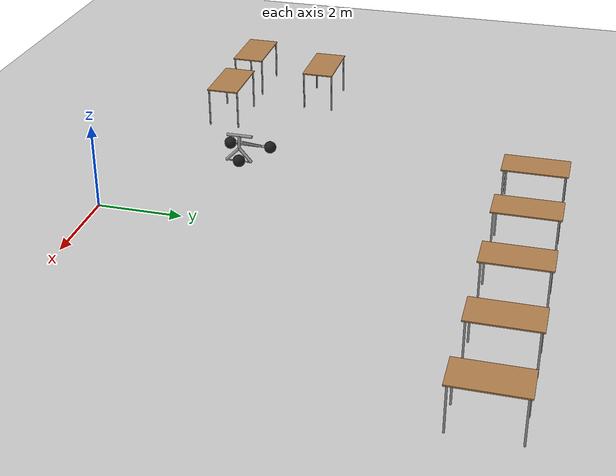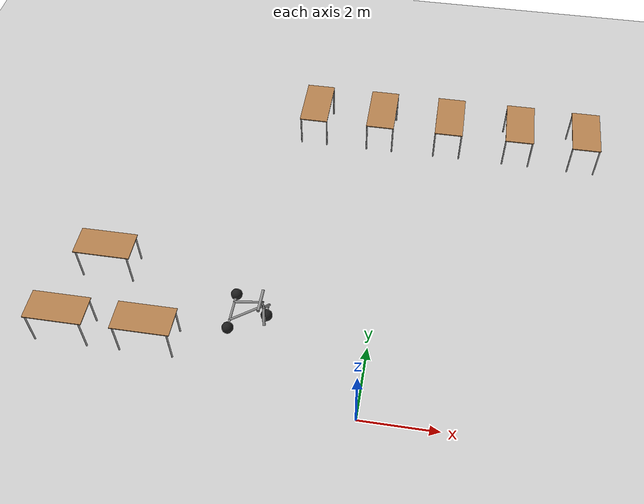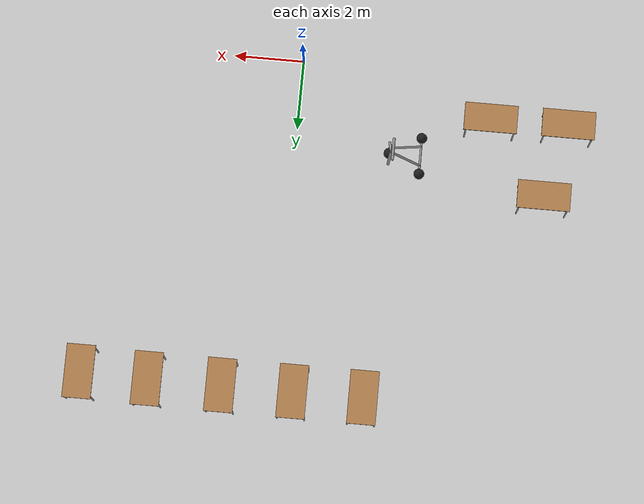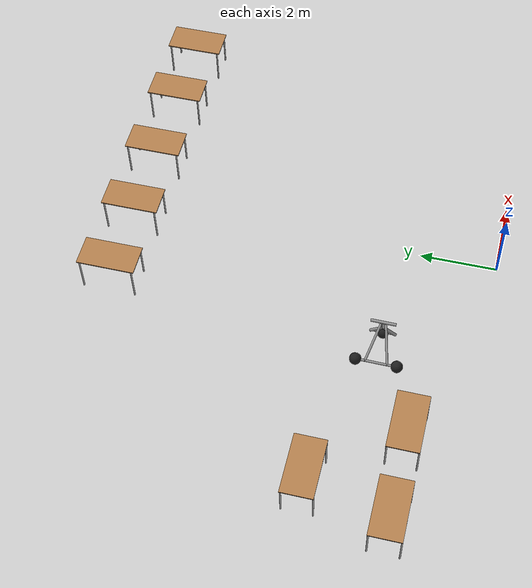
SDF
<sdf version="1.6">
 <world name="default">
  <model name="ground_plane">
   <static>1</static>
   <link name="link">
    <collision name="collision">
     <geometry><plane><normal>0 0 1</normal><size>100 100</size></plane></geometry>
     <surface><friction><ode><mu>100</mu><mu2>50</mu2></ode></friction></surface>
    </collision>
    <visual name="visual">
     <cast_shadows>0</cast_shadows>
     <geometry><plane><normal>0 0 1</normal><size>100 100</size></plane></geometry>
     <material>
      <script><uri>file://media/materials/scripts/gazebo.material</uri><name>Gazebo/Grey</name></script>
     </material>
    </visual>
   </link>
  </model>
  <model name="table_clone">
   <static>1</static>
   <link name="link">
    <collision name="surface">
     <pose>0 0 1 0 -0 0</pose>
     <geometry><box><size>1.5 0.8 0.03</size></box></geometry>
     <surface><friction><ode><mu>0.6</mu><mu2>0.6</mu2></ode></friction></surface>
    </collision>
    <visual name="visual1">
     <pose>0 0 1 0 -0 0</pose>
     <geometry><box><size>1.5 0.8 0.03</size></box></geometry>
     <material>
      <script><uri>file://media/materials/scripts/gazebo.material</uri><name>Gazebo/Wood</name></script>
     </material>
    </visual>
    <collision name="front_left_leg">
     <pose>0.68 0.38 0.5 0 -0 0</pose>
     <geometry><cylinder><radius>0.02</radius><length>1</length></cylinder></geometry>
    </collision>
    <visual name="front_left_leg">
     <pose>0.68 0.38 0.5 0 -0 0</pose>
     <geometry><cylinder><radius>0.02</radius><length>1</length></cylinder></geometry>
     <material>
      <script><uri>file://media/materials/scripts/gazebo.material</uri><name>Gazebo/Grey</name></script>
     </material>
    </visual>
    <collision name="front_right_leg">
     <pose>0.68 -0.38 0.5 0 -0 0</pose>
     <geometry><cylinder><radius>0.02</radius><length>1</length></cylinder></geometry>
    </collision>
    <visual name="front_right_leg">
     <pose>0.68 -0.38 0.5 0 -0 0</pose>
     <geometry><cylinder><radius>0.02</radius><length>1</length></cylinder></geometry>
     <material>
      <script><uri>file://media/materials/scripts/gazebo.material</uri><name>Gazebo/Grey</name></script>
     </material>
    </visual>
    <collision name="back_right_leg">
     <pose>-0.68 -0.38 0.5 0 -0 0</pose>
     <geometry><cylinder><radius>0.02</radius><length>1</length></cylinder></geometry>
    </collision>
    <visual name="back_right_leg">
     <pose>-0.68 -0.38 0.5 0 -0 0</pose>
     <geometry><cylinder><radius>0.02</radius><length>1</length></cylinder></geometry>
     <material>
      <script><uri>file://media/materials/scripts/gazebo.material</uri><name>Gazebo/Grey</name></script>
     </material>
    </visual>
    <collision name="back_left_leg">
     <pose>-0.68 0.38 0.5 0 -0 0</pose>
     <geometry><cylinder><radius>0.02</radius><length>1</length></cylinder></geometry>
    </collision>
    <visual name="back_left_leg">
     <pose>-0.68 0.38 0.5 0 -0 0</pose>
     <geometry><cylinder><radius>0.02</radius><length>1</length></cylinder></geometry>
     <material>
      <script><uri>file://media/materials/scripts/gazebo.material</uri><name>Gazebo/Grey</name></script>
     </material>
    </visual>
   </link>
   <pose>5.36982 9.5628 0 0 0 -1.57</pose>
  </model>
  <model name="table_clone_0">
   <static>1</static>
   <link name="link">
    <collision name="surface">
     <pose>0 0 1 0 -0 0</pose>
     <geometry><box><size>1.5 0.8 0.03</size></box></geometry>
     <surface><friction><ode><mu>0.6</mu><mu2>0.6</mu2></ode></friction></surface>
    </collision>
    <visual name="visual1">
     <pose>0 0 1 0 -0 0</pose>
     <geometry><box><size>1.5 0.8 0.03</size></box></geometry>
     <material>
      <script><uri>file://media/materials/scripts/gazebo.material</uri><name>Gazebo/Wood</name></script>
     </material>
    </visual>
    <collision name="front_left_leg">
     <pose>0.68 0.38 0.5 0 -0 0</pose>
     <geometry><cylinder><radius>0.02</radius><length>1</length></cylinder></geometry>
    </collision>
    <visual name="front_left_leg">
     <pose>0.68 0.38 0.5 0 -0 0</pose>
     <geometry><cylinder><radius>0.02</radius><length>1</length></cylinder></geometry>
     <material>
      <script><uri>file://media/materials/scripts/gazebo.material</uri><name>Gazebo/Grey</name></script>
     </material>
    </visual>
    <collision name="front_right_leg">
     <pose>0.68 -0.38 0.5 0 -0 0</pose>
     <geometry><cylinder><radius>0.02</radius><length>1</length></cylinder></geometry>
    </collision>
    <visual name="front_right_leg">
     <pose>0.68 -0.38 0.5 0 -0 0</pose>
     <geometry><cylinder><radius>0.02</radius><length>1</length></cylinder></geometry>
     <material>
      <script><uri>file://media/materials/scripts/gazebo.material</uri><name>Gazebo/Grey</name></script>
     </material>
    </visual>
    <collision name="back_right_leg">
     <pose>-0.68 -0.38 0.5 0 -0 0</pose>
     <geometry><cylinder><radius>0.02</radius><length>1</length></cylinder></geometry>
    </collision>
    <visual name="back_right_leg">
     <pose>-0.68 -0.38 0.5 0 -0 0</pose>
     <geometry><cylinder><radius>0.02</radius><length>1</length></cylinder></geometry>
     <material>
      <script><uri>file://media/materials/scripts/gazebo.material</uri><name>Gazebo/Grey</name></script>
     </material>
    </visual>
    <collision name="back_left_leg">
     <pose>-0.68 0.38 0.5 0 -0 0</pose>
     <geometry><cylinder><radius>0.02</radius><length>1</length></cylinder></geometry>
    </collision>
    <visual name="back_left_leg">
     <pose>-0.68 0.38 0.5 0 -0 0</pose>
     <geometry><cylinder><radius>0.02</radius><length>1</length></cylinder></geometry>
     <material>
      <script><uri>file://media/materials/scripts/gazebo.material</uri><name>Gazebo/Grey</name></script>
     </material>
    </visual>
   </link>
   <pose>3.47417 9.59504 0 0 0 -1.57</pose>
  </model>
  <model name="table_clone_1">
   <static>1</static>
   <link name="link">
    <collision name="surface">
     <pose>0 0 1 0 -0 0</pose>
     <geometry><box><size>1.5 0.8 0.03</size></box></geometry>
     <surface><friction><ode><mu>0.6</mu><mu2>0.6</mu2></ode></friction></surface>
    </collision>
    <visual name="visual1">
     <pose>0 0 1 0 -0 0</pose>
     <geometry><box><size>1.5 0.8 0.03</size></box></geometry>
     <material>
      <script><uri>file://media/materials/scripts/gazebo.material</uri><name>Gazebo/Wood</name></script>
     </material>
    </visual>
    <collision name="front_left_leg">
     <pose>0.68 0.38 0.5 0 -0 0</pose>
     <geometry><cylinder><radius>0.02</radius><length>1</length></cylinder></geometry>
    </collision>
    <visual name="front_left_leg">
     <pose>0.68 0.38 0.5 0 -0 0</pose>
     <geometry><cylinder><radius>0.02</radius><length>1</length></cylinder></geometry>
     <material>
      <script><uri>file://media/materials/scripts/gazebo.material</uri><name>Gazebo/Grey</name></script>
     </material>
    </visual>
    <collision name="front_right_leg">
     <pose>0.68 -0.38 0.5 0 -0 0</pose>
     <geometry><cylinder><radius>0.02</radius><length>1</length></cylinder></geometry>
    </collision>
    <visual name="front_right_leg">
     <pose>0.68 -0.38 0.5 0 -0 0</pose>
     <geometry><cylinder><radius>0.02</radius><length>1</length></cylinder></geometry>
     <material>
      <script><uri>file://media/materials/scripts/gazebo.material</uri><name>Gazebo/Grey</name></script>
     </material>
    </visual>
    <collision name="back_right_leg">
     <pose>-0.68 -0.38 0.5 0 -0 0</pose>
     <geometry><cylinder><radius>0.02</radius><length>1</length></cylinder></geometry>
    </collision>
    <visual name="back_right_leg">
     <pose>-0.68 -0.38 0.5 0 -0 0</pose>
     <geometry><cylinder><radius>0.02</radius><length>1</length></cylinder></geometry>
     <material>
      <script><uri>file://media/materials/scripts/gazebo.material</uri><name>Gazebo/Grey</name></script>
     </material>
    </visual>
    <collision name="back_left_leg">
     <pose>-0.68 0.38 0.5 0 -0 0</pose>
     <geometry><cylinder><radius>0.02</radius><length>1</length></cylinder></geometry>
    </collision>
    <visual name="back_left_leg">
     <pose>-0.68 0.38 0.5 0 -0 0</pose>
     <geometry><cylinder><radius>0.02</radius><length>1</length></cylinder></geometry>
     <material>
      <script><uri>file://media/materials/scripts/gazebo.material</uri><name>Gazebo/Grey</name></script>
     </material>
    </visual>
   </link>
   <pose>1.43565 9.59938 0 0 0 -1.57</pose>
  </model>
  <model name="table_clone_2">
   <static>1</static>
   <link name="link">
    <collision name="surface">
     <pose>0 0 1 0 -0 0</pose>
     <geometry><box><size>1.5 0.8 0.03</size></box></geometry>
     <surface><friction><ode><mu>0.6</mu><mu2>0.6</mu2></ode></friction></surface>
    </collision>
    <visual name="visual1">
     <pose>0 0 1 0 -0 0</pose>
     <geometry><box><size>1.5 0.8 0.03</size></box></geometry>
     <material>
      <script><uri>file://media/materials/scripts/gazebo.material</uri><name>Gazebo/Wood</name></script>
     </material>
    </visual>
    <collision name="front_left_leg">
     <pose>0.68 0.38 0.5 0 -0 0</pose>
     <geometry><cylinder><radius>0.02</radius><length>1</length></cylinder></geometry>
    </collision>
    <visual name="front_left_leg">
     <pose>0.68 0.38 0.5 0 -0 0</pose>
     <geometry><cylinder><radius>0.02</radius><length>1</length></cylinder></geometry>
     <material>
      <script><uri>file://media/materials/scripts/gazebo.material</uri><name>Gazebo/Grey</name></script>
     </material>
    </visual>
    <collision name="front_right_leg">
     <pose>0.68 -0.38 0.5 0 -0 0</pose>
     <geometry><cylinder><radius>0.02</radius><length>1</length></cylinder></geometry>
    </collision>
    <visual name="front_right_leg">
     <pose>0.68 -0.38 0.5 0 -0 0</pose>
     <geometry><cylinder><radius>0.02</radius><length>1</length></cylinder></geometry>
     <material>
      <script><uri>file://media/materials/scripts/gazebo.material</uri><name>Gazebo/Grey</name></script>
     </material>
    </visual>
    <collision name="back_right_leg">
     <pose>-0.68 -0.38 0.5 0 -0 0</pose>
     <geometry><cylinder><radius>0.02</radius><length>1</length></cylinder></geometry>
    </collision>
    <visual name="back_right_leg">
     <pose>-0.68 -0.38 0.5 0 -0 0</pose>
     <geometry><cylinder><radius>0.02</radius><length>1</length></cylinder></geometry>
     <material>
      <script><uri>file://media/materials/scripts/gazebo.material</uri><name>Gazebo/Grey</name></script>
     </material>
    </visual>
    <collision name="back_left_leg">
     <pose>-0.68 0.38 0.5 0 -0 0</pose>
     <geometry><cylinder><radius>0.02</radius><length>1</length></cylinder></geometry>
    </collision>
    <visual name="back_left_leg">
     <pose>-0.68 0.38 0.5 0 -0 0</pose>
     <geometry><cylinder><radius>0.02</radius><length>1</length></cylinder></geometry>
     <material>
      <script><uri>file://media/materials/scripts/gazebo.material</uri><name>Gazebo/Grey</name></script>
     </material>
    </visual>
   </link>
   <pose>-0.563458 9.59911 0 0 0 -1.57</pose>
  </model>
  <model name="table_clone_3">
   <static>1</static>
   <link name="link">
    <collision name="surface">
     <pose>0 0 1 0 -0 0</pose>
     <geometry><box><size>1.5 0.8 0.03</size></box></geometry>
     <surface><friction><ode><mu>0.6</mu><mu2>0.6</mu2></ode></friction></surface>
    </collision>
    <visual name="visual1">
     <pose>0 0 1 0 -0 0</pose>
     <geometry><box><size>1.5 0.8 0.03</size></box></geometry>
     <material>
      <script><uri>file://media/materials/scripts/gazebo.material</uri><name>Gazebo/Wood</name></script>
     </material>
    </visual>
    <collision name="front_left_leg">
     <pose>0.68 0.38 0.5 0 -0 0</pose>
     <geometry><cylinder><radius>0.02</radius><length>1</length></cylinder></geometry>
    </collision>
    <visual name="front_left_leg">
     <pose>0.68 0.38 0.5 0 -0 0</pose>
     <geometry><cylinder><radius>0.02</radius><length>1</length></cylinder></geometry>
     <material>
      <script><uri>file://media/materials/scripts/gazebo.material</uri><name>Gazebo/Grey</name></script>
     </material>
    </visual>
    <collision name="front_right_leg">
     <pose>0.68 -0.38 0.5 0 -0 0</pose>
     <geometry><cylinder><radius>0.02</radius><length>1</length></cylinder></geometry>
    </collision>
    <visual name="front_right_leg">
     <pose>0.68 -0.38 0.5 0 -0 0</pose>
     <geometry><cylinder><radius>0.02</radius><length>1</length></cylinder></geometry>
     <material>
      <script><uri>file://media/materials/scripts/gazebo.material</uri><name>Gazebo/Grey</name></script>
     </material>
    </visual>
    <collision name="back_right_leg">
     <pose>-0.68 -0.38 0.5 0 -0 0</pose>
     <geometry><cylinder><radius>0.02</radius><length>1</length></cylinder></geometry>
    </collision>
    <visual name="back_right_leg">
     <pose>-0.68 -0.38 0.5 0 -0 0</pose>
     <geometry><cylinder><radius>0.02</radius><length>1</length></cylinder></geometry>
     <material>
      <script><uri>file://media/materials/scripts/gazebo.material</uri><name>Gazebo/Grey</name></script>
     </material>
    </visual>
    <collision name="back_left_leg">
     <pose>-0.68 0.38 0.5 0 -0 0</pose>
     <geometry><cylinder><radius>0.02</radius><length>1</length></cylinder></geometry>
    </collision>
    <visual name="back_left_leg">
     <pose>-0.68 0.38 0.5 0 -0 0</pose>
     <geometry><cylinder><radius>0.02</radius><length>1</length></cylinder></geometry>
     <material>
      <script><uri>file://media/materials/scripts/gazebo.material</uri><name>Gazebo/Grey</name></script>
     </material>
    </visual>
   </link>
   <pose>-2.5236 9.5957 0 0 0 -1.57</pose>
  </model>
  <model name="table">
   <static>1</static>
   <link name="link">
    <collision name="surface">
     <pose>0 0 1 0 -0 0</pose>
     <geometry><box><size>1.5 0.8 0.03</size></box></geometry>
     <surface><friction><ode><mu>0.6</mu><mu2>0.6</mu2></ode></friction></surface>
    </collision>
    <visual name="visual1">
     <pose>0 0 1 0 -0 0</pose>
     <geometry><box><size>1.5 0.8 0.03</size></box></geometry>
     <material>
      <script><uri>file://media/materials/scripts/gazebo.material</uri><name>Gazebo/Wood</name></script>
     </material>
    </visual>
    <collision name="front_left_leg">
     <pose>0.68 0.38 0.5 0 -0 0</pose>
     <geometry><cylinder><radius>0.02</radius><length>1</length></cylinder></geometry>
    </collision>
    <visual name="front_left_leg">
     <pose>0.68 0.38 0.5 0 -0 0</pose>
     <geometry><cylinder><radius>0.02</radius><length>1</length></cylinder></geometry>
     <material>
      <script><uri>file://media/materials/scripts/gazebo.material</uri><name>Gazebo/Grey</name></script>
     </material>
    </visual>
    <collision name="front_right_leg">
     <pose>0.68 -0.38 0.5 0 -0 0</pose>
     <geometry><cylinder><radius>0.02</radius><length>1</length></cylinder></geometry>
    </collision>
    <visual name="front_right_leg">
     <pose>0.68 -0.38 0.5 0 -0 0</pose>
     <geometry><cylinder><radius>0.02</radius><length>1</length></cylinder></geometry>
     <material>
      <script><uri>file://media/materials/scripts/gazebo.material</uri><name>Gazebo/Grey</name></script>
     </material>
    </visual>
    <collision name="back_right_leg">
     <pose>-0.68 -0.38 0.5 0 -0 0</pose>
     <geometry><cylinder><radius>0.02</radius><length>1</length></cylinder></geometry>
    </collision>
    <visual name="back_right_leg">
     <pose>-0.68 -0.38 0.5 0 -0 0</pose>
     <geometry><cylinder><radius>0.02</radius><length>1</length></cylinder></geometry>
     <material>
      <script><uri>file://media/materials/scripts/gazebo.material</uri><name>Gazebo/Grey</name></script>
     </material>
    </visual>
    <collision name="back_left_leg">
     <pose>-0.68 0.38 0.5 0 -0 0</pose>
     <geometry><cylinder><radius>0.02</radius><length>1</length></cylinder></geometry>
    </collision>
    <visual name="back_left_leg">
     <pose>-0.68 0.38 0.5 0 -0 0</pose>
     <geometry><cylinder><radius>0.02</radius><length>1</length></cylinder></geometry>
     <material>
      <script><uri>file://media/materials/scripts/gazebo.material</uri><name>Gazebo/Grey</name></script>
     </material>
    </visual>
   </link>
   <pose>-7.63732 1.38708 0 0 -0 0</pose>
  </model>
  <model name="table_clone_4">
   <static>1</static>
   <link name="link">
    <collision name="surface">
     <pose>0 0 1 0 -0 0</pose>
     <geometry><box><size>1.5 0.8 0.03</size></box></geometry>
     <surface><friction><ode><mu>0.6</mu><mu2>0.6</mu2></ode></friction></surface>
    </collision>
    <visual name="visual1">
     <pose>0 0 1 0 -0 0</pose>
     <geometry><box><size>1.5 0.8 0.03</size></box></geometry>
     <material>
      <script><uri>file://media/materials/scripts/gazebo.material</uri><name>Gazebo/Wood</name></script>
     </material>
    </visual>
    <collision name="front_left_leg">
     <pose>0.68 0.38 0.5 0 -0 0</pose>
     <geometry><cylinder><radius>0.02</radius><length>1</length></cylinder></geometry>
    </collision>
    <visual name="front_left_leg">
     <pose>0.68 0.38 0.5 0 -0 0</pose>
     <geometry><cylinder><radius>0.02</radius><length>1</length></cylinder></geometry>
     <material>
      <script><uri>file://media/materials/scripts/gazebo.material</uri><name>Gazebo/Grey</name></script>
     </material>
    </visual>
    <collision name="front_right_leg">
     <pose>0.68 -0.38 0.5 0 -0 0</pose>
     <geometry><cylinder><radius>0.02</radius><length>1</length></cylinder></geometry>
    </collision>
    <visual name="front_right_leg">
     <pose>0.68 -0.38 0.5 0 -0 0</pose>
     <geometry><cylinder><radius>0.02</radius><length>1</length></cylinder></geometry>
     <material>
      <script><uri>file://media/materials/scripts/gazebo.material</uri><name>Gazebo/Grey</name></script>
     </material>
    </visual>
    <collision name="back_right_leg">
     <pose>-0.68 -0.38 0.5 0 -0 0</pose>
     <geometry><cylinder><radius>0.02</radius><length>1</length></cylinder></geometry>
    </collision>
    <visual name="back_right_leg">
     <pose>-0.68 -0.38 0.5 0 -0 0</pose>
     <geometry><cylinder><radius>0.02</radius><length>1</length></cylinder></geometry>
     <material>
      <script><uri>file://media/materials/scripts/gazebo.material</uri><name>Gazebo/Grey</name></script>
     </material>
    </visual>
    <collision name="back_left_leg">
     <pose>-0.68 0.38 0.5 0 -0 0</pose>
     <geometry><cylinder><radius>0.02</radius><length>1</length></cylinder></geometry>
    </collision>
    <visual name="back_left_leg">
     <pose>-0.68 0.38 0.5 0 -0 0</pose>
     <geometry><cylinder><radius>0.02</radius><length>1</length></cylinder></geometry>
     <material>
      <script><uri>file://media/materials/scripts/gazebo.material</uri><name>Gazebo/Grey</name></script>
     </material>
    </visual>
   </link>
   <pose>-5.43848 1.40059 0 0 -0 0</pose>
  </model>
  <model name="table_clone_11">
   <static>1</static>
   <link name="link">
    <collision name="surface">
     <pose>0 0 1 0 -0 0</pose>
     <geometry><box><size>1.5 0.8 0.03</size></box></geometry>
     <surface><friction><ode><mu>0.6</mu><mu2>0.6</mu2></ode></friction></surface>
    </collision>
    <visual name="visual1">
     <pose>0 0 1 0 -0 0</pose>
     <geometry><box><size>1.5 0.8 0.03</size></box></geometry>
     <material>
      <script><uri>file://media/materials/scripts/gazebo.material</uri><name>Gazebo/Wood</name></script>
     </material>
    </visual>
    <collision name="front_left_leg">
     <pose>0.68 0.38 0.5 0 -0 0</pose>
     <geometry><cylinder><radius>0.02</radius><length>1</length></cylinder></geometry>
    </collision>
    <visual name="front_left_leg">
     <pose>0.68 0.38 0.5 0 -0 0</pose>
     <geometry><cylinder><radius>0.02</radius><length>1</length></cylinder></geometry>
     <material>
      <script><uri>file://media/materials/scripts/gazebo.material</uri><name>Gazebo/Grey</name></script>
     </material>
    </visual>
    <collision name="front_right_leg">
     <pose>0.68 -0.38 0.5 0 -0 0</pose>
     <geometry><cylinder><radius>0.02</radius><length>1</length></cylinder></geometry>
    </collision>
    <visual name="front_right_leg">
     <pose>0.68 -0.38 0.5 0 -0 0</pose>
     <geometry><cylinder><radius>0.02</radius><length>1</length></cylinder></geometry>
     <material>
      <script><uri>file://media/materials/scripts/gazebo.material</uri><name>Gazebo/Grey</name></script>
     </material>
    </visual>
    <collision name="back_right_leg">
     <pose>-0.68 -0.38 0.5 0 -0 0</pose>
     <geometry><cylinder><radius>0.02</radius><length>1</length></cylinder></geometry>
    </collision>
    <visual name="back_right_leg">
     <pose>-0.68 -0.38 0.5 0 -0 0</pose>
     <geometry><cylinder><radius>0.02</radius><length>1</length></cylinder></geometry>
     <material>
      <script><uri>file://media/materials/scripts/gazebo.material</uri><name>Gazebo/Grey</name></script>
     </material>
    </visual>
    <collision name="back_left_leg">
     <pose>-0.68 0.38 0.5 0 -0 0</pose>
     <geometry><cylinder><radius>0.02</radius><length>1</length></cylinder></geometry>
    </collision>
    <visual name="back_left_leg">
     <pose>-0.68 0.38 0.5 0 -0 0</pose>
     <geometry><cylinder><radius>0.02</radius><length>1</length></cylinder></geometry>
     <material>
      <script><uri>file://media/materials/scripts/gazebo.material</uri><name>Gazebo/Grey</name></script>
     </material>
    </visual>
   </link>
   <pose>-7.08899 3.49444 0 0 -0 0</pose>
  </model>
  <model name="trisphere_cycle">
   <link name="frame">
    <pose>-0.408559 0 0.385023 0 -0.522021 0</pose>
    <inertial>
     <mass>10</mass>
     <inertia><ixx>0.228</ixx><iyy>0.743521</iyy><izz>0.965521</izz><ixy>0</ixy><ixz>0</ixz><iyz>0</iyz></inertia>
    </inertial>
    <collision name="axle_collision">
     <pose>-0.471335 0 0 1.5708 -0 0</pose>
     <geometry><cylinder><length>1.03923</length><radius>0.03</radius></cylinder></geometry>
    </collision>
    <visual name="axle_visual">
     <pose>-0.471335 0 0 1.5708 -0 0</pose>
     <geometry><cylinder><length>1.03923</length><radius>0.03</radius></cylinder></geometry>
     <material>
      <script><uri>file://media/materials/scripts/gazebo.material</uri><name>Gazebo/Grey</name></script>
     </material>
    </visual>
    <collision name="frame_left_collision">
     <pose>0 0.171552 0 2.986 1.57079 2.76675</pose>
     <geometry><cylinder><length>1.00317</length><radius>0.03</radius></cylinder></geometry>
    </collision>
    <visual name="frame_left_visual">
     <pose>0 0.171552 0 2.986 1.57079 2.76675</pose>
     <geometry><cylinder><length>1.00317</length><radius>0.03</radius></cylinder></geometry>
     <material>
      <script><uri>file://media/materials/scripts/gazebo.material</uri><name>Gazebo/Grey</name></script>
     </material>
    </visual>
    <collision name="frame_right_collision">
     <pose>0 -0.171552 0 -2.986 1.57079 -2.76675</pose>
     <geometry><cylinder><length>1.00317</length><radius>0.03</radius></cylinder></geometry>
    </collision>
    <visual name="frame_right_visual">
     <pose>0 -0.171552 0 -2.986 1.57079 -2.76675</pose>
     <geometry><cylinder><length>1.00317</length><radius>0.03</radius></cylinder></geometry>
     <material>
      <script><uri>file://media/materials/scripts/gazebo.material</uri><name>Gazebo/Grey</name></script>
     </material>
    </visual>
   </link>
   <link name="fork">
    <pose>0.041441 0 0.385023 0 -0.174533 0</pose>
    <inertial>
     <mass>3</mass>
     <inertia>
      <ixx>0.158203</ixx>
      <iyy>0.0583594</iyy>
      <izz>0.102656</izz>
      <ixy>0</ixy>
      <ixz>0</ixz>
      <iyz>0</iyz>
     </inertia>
    </inertial>
    <collision name="handlebars_collision">
     <pose>0 0 0.397748 1.5708 -0 0</pose>
     <geometry><cylinder><length>0.636396</length><radius>0.0375</radius></cylinder></geometry>
    </collision>
    <visual name="handlebars_visual">
     <pose>0 0 0.397748 1.5708 -0 0</pose>
     <geometry><cylinder><length>0.636396</length><radius>0.0375</radius></cylinder></geometry>
     <material>
      <script><uri>file://media/materials/scripts/gazebo.material</uri><name>Gazebo/Grey</name></script>
     </material>
    </visual>
    <collision name="headtube_collision">
     <pose>0 0 0.238649 0 -0 0</pose>
     <geometry><cylinder><length>0.318198</length><radius>0.0375</radius></cylinder></geometry>
    </collision>
    <visual name="headtube_visual">
     <pose>0 0 0.238649 0 -0 0</pose>
     <geometry><cylinder><length>0.318198</length><radius>0.0375</radius></cylinder></geometry>
     <material>
      <script><uri>file://media/materials/scripts/gazebo.material</uri><name>Gazebo/Grey</name></script>
     </material>
    </visual>
    <collision name="spindle_collision">
     <pose>0 0 -0.238649 1.5708 -0 0</pose>
     <geometry><cylinder><length>0.636396</length><radius>0.015</radius></cylinder></geometry>
    </collision>
    <visual name="spindle_visual">
     <pose>0 0 -0.238649 1.5708 -0 0</pose>
     <geometry><cylinder><length>0.636396</length><radius>0.015</radius></cylinder></geometry>
     <material>
      <script><uri>file://media/materials/scripts/gazebo.material</uri><name>Gazebo/Grey</name></script>
     </material>
    </visual>
    <collision name="fork_left_collision">
     <pose>0 0.159099 -0.07955 0.785398 -0 0</pose>
     <geometry><cylinder><length>0.45</length><radius>0.0375</radius></cylinder></geometry>
    </collision>
    <visual name="fork_left_visual">
     <pose>0 0.159099 -0.07955 0.785398 -0 0</pose>
     <geometry><cylinder><length>0.45</length><radius>0.0375</radius></cylinder></geometry>
     <material>
      <script><uri>file://media/materials/scripts/gazebo.material</uri><name>Gazebo/Grey</name></script>
     </material>
    </visual>
    <collision name="fork_right_collision">
     <pose>0 -0.159099 -0.07955 -0.785398 0 0</pose>
     <geometry><cylinder><length>0.45</length><radius>0.0375</radius></cylinder></geometry>
    </collision>
    <visual name="fork_right_visual">
     <pose>0 -0.159099 -0.07955 -0.785398 0 0</pose>
     <geometry><cylinder><length>0.45</length><radius>0.0375</radius></cylinder></geometry>
     <material>
      <script><uri>file://media/materials/scripts/gazebo.material</uri><name>Gazebo/Grey</name></script>
     </material>
    </visual>
   </link>
   <link name="wheel_front">
    <pose>0.082882 0 0.15 0 -0 0</pose>
    <inertial>
     <mass>0.5</mass>
     <inertia><ixx>0.0045</ixx><iyy>0.0045</iyy><izz>0.0045</izz><ixy>0</ixy><ixz>0</ixz><iyz>0</iyz></inertia>
    </inertial>
    <collision name="collision">
     <geometry><sphere><radius>0.15</radius></sphere></geometry>
     <surface><contact><ode><kp>1e+08</kp><kd>1</kd><min_depth>0.0005</min_depth></ode></contact></surface>
    </collision>
    <visual name="visual">
     <geometry><sphere><radius>0.15</radius></sphere></geometry>
     <material>
      <script><uri>file://media/materials/scripts/gazebo.material</uri><name>Gazebo/Black</name></script>
     </material>
    </visual>
   </link>
   <joint name="wheel_front_steer" type="revolute">
    <parent>frame</parent>
    <child>fork</child>
    <axis>
     <xyz>0 0 1</xyz>
     <limit><lower>-0.959931</lower><upper>0.959931</upper></limit>
     <use_parent_model_frame>0</use_parent_model_frame>
     <dynamics><spring_reference>0</spring_reference><spring_stiffness>0</spring_stiffness></dynamics>
    </axis>
   </joint>
   <joint name="wheel_front_spin" type="revolute">
    <parent>fork</parent>
    <child>wheel_front</child>
    <axis>
     <xyz>0 1 0</xyz>
     <use_parent_model_frame>0</use_parent_model_frame>
     <limit><lower>-1e+16</lower><upper>1e+16</upper></limit>
     <dynamics><spring_reference>0</spring_reference><spring_stiffness>0</spring_stiffness></dynamics>
    </axis>
   </joint>
   <link name="wheel_rear_left">
    <pose>-0.817118 0.519615 0.15 0 -0 0</pose>
    <inertial>
     <mass>0.5</mass>
     <inertia><ixx>0.0045</ixx><iyy>0.0045</iyy><izz>0.0045</izz><ixy>0</ixy><ixz>0</ixz><iyz>0</iyz></inertia>
    </inertial>
    <collision name="collision">
     <geometry><sphere><radius>0.15</radius></sphere></geometry>
     <surface><contact><ode><kp>1e+08</kp><kd>1</kd><min_depth>0.0005</min_depth></ode></contact></surface>
    </collision>
    <visual name="visual">
     <geometry><sphere><radius>0.15</radius></sphere></geometry>
     <material>
      <script><uri>file://media/materials/scripts/gazebo.material</uri><name>Gazebo/Black</name></script>
     </material>
    </visual>
   </link>
   <joint name="wheel_rear_left_spin" type="revolute">
    <parent>frame</parent>
    <child>wheel_rear_left</child>
    <axis>
     <xyz>0 1 0</xyz>
     <use_parent_model_frame>0</use_parent_model_frame>
     <limit><lower>-1e+16</lower><upper>1e+16</upper></limit>
     <dynamics><spring_reference>0</spring_reference><spring_stiffness>0</spring_stiffness></dynamics>
    </axis>
   </joint>
   <link name="wheel_rear_right">
    <pose>-0.817118 -0.519615 0.15 0 -0 0</pose>
    <inertial>
     <mass>0.5</mass>
     <inertia><ixx>0.0045</ixx><iyy>0.0045</iyy><izz>0.0045</izz><ixy>0</ixy><ixz>0</ixz><iyz>0</iyz></inertia>
    </inertial>
    <collision name="collision">
     <geometry><sphere><radius>0.15</radius></sphere></geometry>
     <surface><contact><ode><kp>1e+08</kp><kd>1</kd><min_depth>0.0005</min_depth></ode></contact></surface>
    </collision>
    <visual name="visual">
     <geometry><sphere><radius>0.15</radius></sphere></geometry>
     <material>
      <script><uri>file://media/materials/scripts/gazebo.material</uri><name>Gazebo/Black</name></script>
     </material>
    </visual>
   </link>
   <joint name="wheel_rear_right_spin" type="revolute">
    <parent>frame</parent>
    <child>wheel_rear_right</child>
    <axis>
     <xyz>0 1 0</xyz>
     <use_parent_model_frame>0</use_parent_model_frame>
     <limit><lower>-1e+16</lower><upper>1e+16</upper></limit>
     <dynamics><spring_reference>0</spring_reference><spring_stiffness>0</spring_stiffness></dynamics>
    </axis>
   </joint>
   <pose>-2.74494 2.49472 -0.000501 0 1e-06 -0.001458</pose>
  </model>
 </world>
</sdf>
